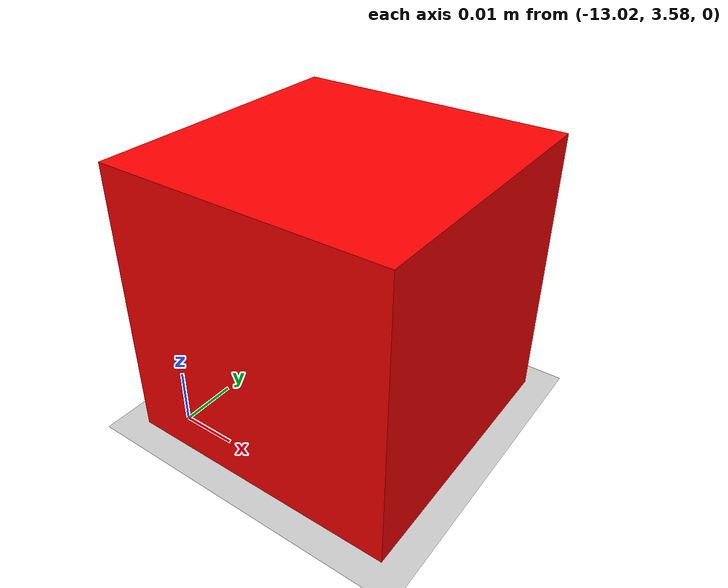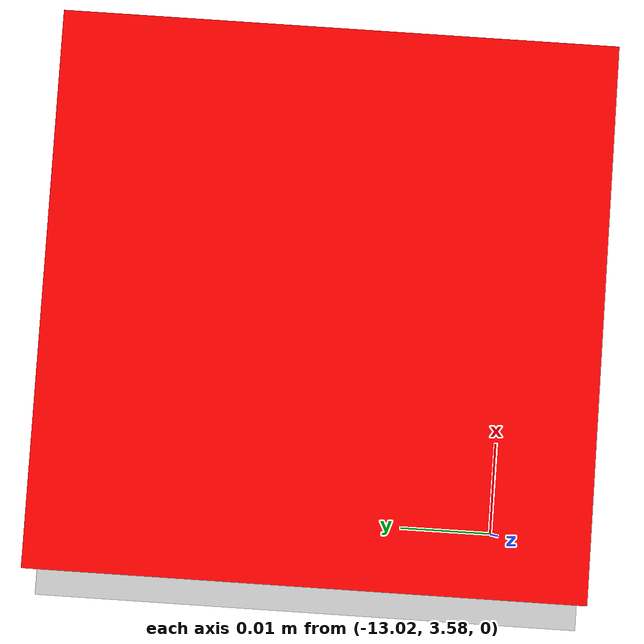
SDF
<sdf version="1.7">
 <world name="default">
  <model name="ground_plane">
   <static>1</static>
   <link name="link">
    <collision name="collision">
     <geometry><plane><normal>0 0 1</normal><size>100 100</size></plane></geometry>
     <surface><friction><ode><mu>100</mu><mu2>100</mu2></ode></friction></surface>
    </collision>
    <visual name="visual">
     <cast_shadows>0</cast_shadows>
     <geometry><plane><normal>0 0 1</normal><size>100 100</size></plane></geometry>
     <material>
      <script><uri>file://media/materials/scripts/gazebo.material</uri><name>Gazebo/Grey</name></script>
     </material>
    </visual>
    <velocity_decay><linear>0</linear><angular>0</angular></velocity_decay>
   </link>
  </model>
  <model name="red_cube_2">
   <pose>-13.0 3.6 .025 0 0 0</pose>
   <link name="link">
    <inertial>
     <mass>.03</mass>
     <inertia>
      <ixx>.0000125</ixx>
      <ixy>0</ixy>
      <ixz>0</ixz>
      <iyy>.0000125</iyy>
      <iyz>0</iyz>
      <izz>.0000125</izz>
     </inertia>
    </inertial>
    <collision name="collision">
     <geometry><box><size>.05 .05 .05</size></box></geometry>
     <max_contacts>1</max_contacts>
    </collision>
    <visual name="visual">
     <geometry><box><size>.05 .05 .05</size></box></geometry>
     <material><ambient>1 0 0 1</ambient><diffuse>1 0 0 1</diffuse></material>
    </visual>
   </link>
  </model>
 </world>
</sdf>
